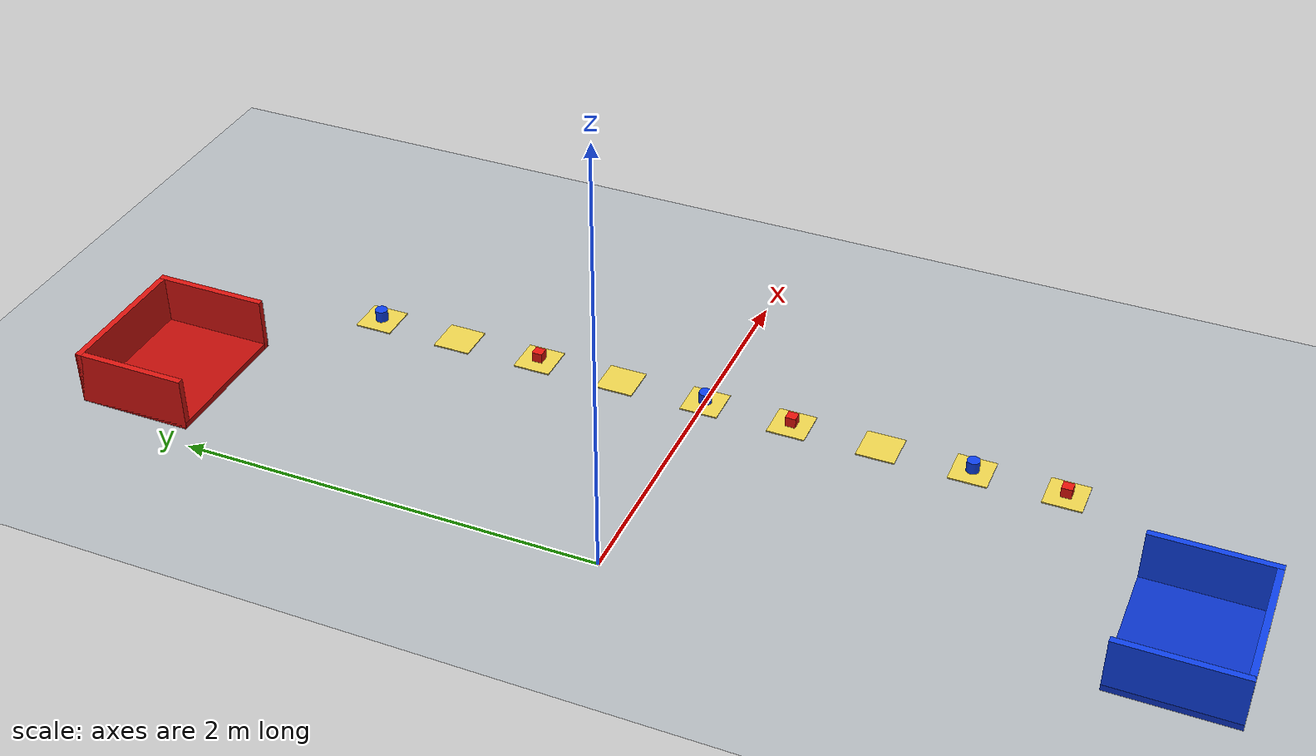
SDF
<?xml version="1.0"?>
<sdf version="1.8">
  <world name="sorting_world">
    <physics name="1ms" type="ignored">
      <max_step_size>0.001</max_step_size>
      <real_time_factor>1.0</real_time_factor>
    </physics>

    <plugin filename="ignition-gazebo-physics-system" name="ignition::gazebo::systems::Physics"/>
    <plugin filename="ignition-gazebo-user-commands-system" name="ignition::gazebo::systems::UserCommands"/>
    <plugin filename="ignition-gazebo-scene-broadcaster-system" name="ignition::gazebo::systems::SceneBroadcaster"/>
    <plugin filename="ignition-gazebo-sensors-system" name="ignition::gazebo::systems::Sensors">
      <render_engine>ogre2</render_engine>
    </plugin>

    <scene>
      <ambient>0.65 0.65 0.65 1</ambient>
      <background>0.82 0.86 0.90 1</background>
      <shadows>true</shadows>
    </scene>

    <light type="directional" name="sun">
      <cast_shadows>true</cast_shadows>
      <pose>0 0 8 0 0 0</pose>
      <diffuse>0.95 0.95 0.95 1</diffuse>
      <specular>0.25 0.25 0.25 1</specular>
      <direction>-0.4 0.2 -1</direction>
    </light>

    <model name="ground_plane">
      <static>true</static>
      <link name="ground">
        <collision name="collision">
          <geometry><plane><normal>0 0 1</normal><size>12 12</size></plane></geometry>
        </collision>
        <visual name="visual">
          <geometry><plane><normal>0 0 1</normal><size>12 12</size></plane></geometry>
          <material><ambient>0.70 0.72 0.74 1</ambient><diffuse>0.70 0.72 0.74 1</diffuse></material>
        </visual>
      </link>
    </model>

    <!-- Nine 18 cm pickup grids in one straight line.  Centre spacing is
         42 cm, leaving 24 cm of clear separation between neighbouring cells. -->
    <model name="pickup_grid_1"><static>true</static><pose>1.20 -1.68 0.003 0 0 0</pose><link name="cell"><visual name="visual"><geometry><box><size>0.18 0.18 0.006</size></box></geometry><material><ambient>0.92 0.82 0.30 1</ambient><diffuse>0.92 0.82 0.30 1</diffuse></material></visual></link></model>
    <model name="pickup_grid_2"><static>true</static><pose>1.20 -1.26 0.003 0 0 0</pose><link name="cell"><visual name="visual"><geometry><box><size>0.18 0.18 0.006</size></box></geometry><material><ambient>0.92 0.82 0.30 1</ambient><diffuse>0.92 0.82 0.30 1</diffuse></material></visual></link></model>
    <model name="pickup_grid_3"><static>true</static><pose>1.20 -0.84 0.003 0 0 0</pose><link name="cell"><visual name="visual"><geometry><box><size>0.18 0.18 0.006</size></box></geometry><material><ambient>0.92 0.82 0.30 1</ambient><diffuse>0.92 0.82 0.30 1</diffuse></material></visual></link></model>
    <model name="pickup_grid_4"><static>true</static><pose>1.20 -0.42 0.003 0 0 0</pose><link name="cell"><visual name="visual"><geometry><box><size>0.18 0.18 0.006</size></box></geometry><material><ambient>0.92 0.82 0.30 1</ambient><diffuse>0.92 0.82 0.30 1</diffuse></material></visual></link></model>
    <model name="pickup_grid_5"><static>true</static><pose>1.20 0.00 0.003 0 0 0</pose><link name="cell"><visual name="visual"><geometry><box><size>0.18 0.18 0.006</size></box></geometry><material><ambient>0.92 0.82 0.30 1</ambient><diffuse>0.92 0.82 0.30 1</diffuse></material></visual></link></model>
    <model name="pickup_grid_6"><static>true</static><pose>1.20 0.42 0.003 0 0 0</pose><link name="cell"><visual name="visual"><geometry><box><size>0.18 0.18 0.006</size></box></geometry><material><ambient>0.92 0.82 0.30 1</ambient><diffuse>0.92 0.82 0.30 1</diffuse></material></visual></link></model>
    <model name="pickup_grid_7"><static>true</static><pose>1.20 0.84 0.003 0 0 0</pose><link name="cell"><visual name="visual"><geometry><box><size>0.18 0.18 0.006</size></box></geometry><material><ambient>0.92 0.82 0.30 1</ambient><diffuse>0.92 0.82 0.30 1</diffuse></material></visual></link></model>
    <model name="pickup_grid_8"><static>true</static><pose>1.20 1.26 0.003 0 0 0</pose><link name="cell"><visual name="visual"><geometry><box><size>0.18 0.18 0.006</size></box></geometry><material><ambient>0.92 0.82 0.30 1</ambient><diffuse>0.92 0.82 0.30 1</diffuse></material></visual></link></model>
    <model name="pickup_grid_9"><static>true</static><pose>1.20 1.68 0.003 0 0 0</pose><link name="cell"><visual name="visual"><geometry><box><size>0.18 0.18 0.006</size></box></geometry><material><ambient>0.92 0.82 0.30 1</ambient><diffuse>0.92 0.82 0.30 1</diffuse></material></visual></link></model>

    <!-- Six physical objects in two classes.  Grids 3, 6 and 8 are empty. -->
    <model name="object_grid_1"><static>true</static><pose>1.20 -1.68 0.030 0 0 0</pose><link name="object"><gravity>false</gravity><collision name="collision"><geometry><box><size>0.05 0.05 0.05</size></box></geometry></collision><visual name="visual"><geometry><box><size>0.05 0.05 0.05</size></box></geometry><material><ambient>0.90 0.08 0.05 1</ambient><diffuse>0.90 0.08 0.05 1</diffuse></material></visual></link></model>
    <model name="object_grid_2"><static>true</static><pose>1.20 -1.26 0.033 0 0 0</pose><link name="object"><gravity>false</gravity><collision name="collision"><geometry><cylinder><radius>0.03</radius><length>0.06</length></cylinder></geometry></collision><visual name="visual"><geometry><cylinder><radius>0.03</radius><length>0.06</length></cylinder></geometry><material><ambient>0.05 0.25 0.92 1</ambient><diffuse>0.05 0.25 0.92 1</diffuse></material></visual></link></model>
    <model name="object_grid_4"><static>true</static><pose>1.20 -0.42 0.030 0 0 0</pose><link name="object"><gravity>false</gravity><collision name="collision"><geometry><box><size>0.05 0.05 0.05</size></box></geometry></collision><visual name="visual"><geometry><box><size>0.05 0.05 0.05</size></box></geometry><material><ambient>0.90 0.08 0.05 1</ambient><diffuse>0.90 0.08 0.05 1</diffuse></material></visual></link></model>
    <model name="object_grid_5"><static>true</static><pose>1.20 0.00 0.033 0 0 0</pose><link name="object"><gravity>false</gravity><collision name="collision"><geometry><cylinder><radius>0.03</radius><length>0.06</length></cylinder></geometry></collision><visual name="visual"><geometry><cylinder><radius>0.03</radius><length>0.06</length></cylinder></geometry><material><ambient>0.05 0.25 0.92 1</ambient><diffuse>0.05 0.25 0.92 1</diffuse></material></visual></link></model>
    <model name="object_grid_7"><static>true</static><pose>1.20 0.84 0.030 0 0 0</pose><link name="object"><gravity>false</gravity><collision name="collision"><geometry><box><size>0.05 0.05 0.05</size></box></geometry></collision><visual name="visual"><geometry><box><size>0.05 0.05 0.05</size></box></geometry><material><ambient>0.90 0.08 0.05 1</ambient><diffuse>0.90 0.08 0.05 1</diffuse></material></visual></link></model>
    <model name="object_grid_9"><static>true</static><pose>1.20 1.68 0.033 0 0 0</pose><link name="object"><gravity>false</gravity><collision name="collision"><geometry><cylinder><radius>0.03</radius><length>0.06</length></cylinder></geometry></collision><visual name="visual"><geometry><cylinder><radius>0.03</radius><length>0.06</length></cylinder></geometry><material><ambient>0.05 0.25 0.92 1</ambient><diffuse>0.05 0.25 0.92 1</diffuse></material></visual></link></model>

    <!-- Large open-front class bins.  Red/class_1 is left (+Y), blue/class_2
         is right (-Y).  Open fronts let the arm enter without a wall strike. -->
    <model name="class_1_left_bin">
      <static>true</static><pose>0.45 2.35 0 0 0 0</pose>
      <link name="bin">
        <collision name="floor_collision"><pose>0 0 0.015 0 0 0</pose><geometry><box><size>0.70 0.55 0.03</size></box></geometry></collision>
        <visual name="floor_visual"><pose>0 0 0.015 0 0 0</pose><geometry><box><size>0.70 0.55 0.03</size></box></geometry><material><ambient>0.75 0.05 0.04 1</ambient><diffuse>0.75 0.05 0.04 1</diffuse></material></visual>
        <collision name="left_wall_collision"><pose>0.335 0 0.13 0 0 0</pose><geometry><box><size>0.03 0.55 0.26</size></box></geometry></collision>
        <visual name="left_wall_visual"><pose>0.335 0 0.13 0 0 0</pose><geometry><box><size>0.03 0.55 0.26</size></box></geometry><material><ambient>0.85 0.08 0.06 1</ambient><diffuse>0.85 0.08 0.06 1</diffuse></material></visual>
        <collision name="right_wall_collision"><pose>-0.335 0 0.13 0 0 0</pose><geometry><box><size>0.03 0.55 0.26</size></box></geometry></collision>
        <visual name="right_wall_visual"><pose>-0.335 0 0.13 0 0 0</pose><geometry><box><size>0.03 0.55 0.26</size></box></geometry><material><ambient>0.85 0.08 0.06 1</ambient><diffuse>0.85 0.08 0.06 1</diffuse></material></visual>
        <collision name="back_wall_collision"><pose>0 0.26 0.13 0 0 0</pose><geometry><box><size>0.70 0.03 0.26</size></box></geometry></collision>
        <visual name="back_wall_visual"><pose>0 0.26 0.13 0 0 0</pose><geometry><box><size>0.70 0.03 0.26</size></box></geometry><material><ambient>0.85 0.08 0.06 1</ambient><diffuse>0.85 0.08 0.06 1</diffuse></material></visual>
      </link>
    </model>

    <model name="class_2_right_bin">
      <static>true</static><pose>0.45 -2.35 0 0 0 0</pose>
      <link name="bin">
        <collision name="floor_collision"><pose>0 0 0.015 0 0 0</pose><geometry><box><size>0.70 0.55 0.03</size></box></geometry></collision>
        <visual name="floor_visual"><pose>0 0 0.015 0 0 0</pose><geometry><box><size>0.70 0.55 0.03</size></box></geometry><material><ambient>0.04 0.20 0.78 1</ambient><diffuse>0.04 0.20 0.78 1</diffuse></material></visual>
        <collision name="left_wall_collision"><pose>0.335 0 0.13 0 0 0</pose><geometry><box><size>0.03 0.55 0.26</size></box></geometry></collision>
        <visual name="left_wall_visual"><pose>0.335 0 0.13 0 0 0</pose><geometry><box><size>0.03 0.55 0.26</size></box></geometry><material><ambient>0.05 0.25 0.90 1</ambient><diffuse>0.05 0.25 0.90 1</diffuse></material></visual>
        <collision name="right_wall_collision"><pose>-0.335 0 0.13 0 0 0</pose><geometry><box><size>0.03 0.55 0.26</size></box></geometry></collision>
        <visual name="right_wall_visual"><pose>-0.335 0 0.13 0 0 0</pose><geometry><box><size>0.03 0.55 0.26</size></box></geometry><material><ambient>0.05 0.25 0.90 1</ambient><diffuse>0.05 0.25 0.90 1</diffuse></material></visual>
        <collision name="back_wall_collision"><pose>0 -0.26 0.13 0 0 0</pose><geometry><box><size>0.70 0.03 0.26</size></box></geometry></collision>
        <visual name="back_wall_visual"><pose>0 -0.26 0.13 0 0 0</pose><geometry><box><size>0.70 0.03 0.26</size></box></geometry><material><ambient>0.05 0.25 0.90 1</ambient><diffuse>0.05 0.25 0.90 1</diffuse></material></visual>
      </link>
    </model>

    <!-- Fixed RGB overview camera. -->
    <model name="sorting_overhead_camera">
      <static>true</static>
      <pose>1.10 0 4.20 0 1.570796 0</pose>
      <link name="camera_link">
        <sensor name="sorting_camera" type="camera">
          <always_on>true</always_on>
          <update_rate>10</update_rate>
          <topic>/sorting_camera/image</topic>
          <camera>
            <horizontal_fov>1.20</horizontal_fov>
            <image><width>1280</width><height>720</height><format>R8G8B8</format></image>
            <clip><near>0.10</near><far>20.0</far></clip>
          </camera>
        </sensor>
      </link>
    </model>
  </world>
</sdf>
